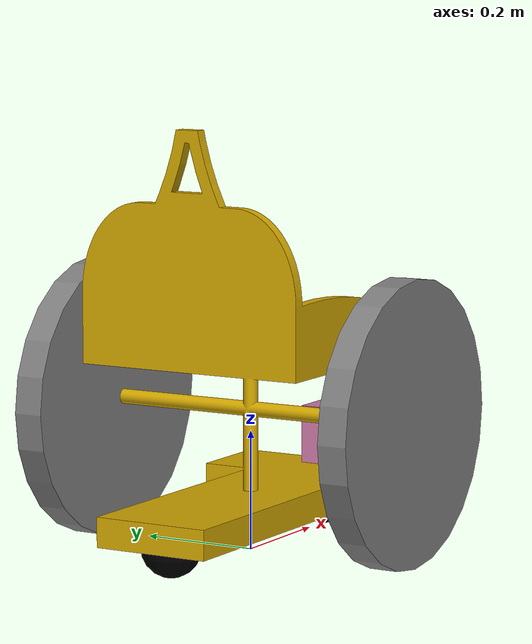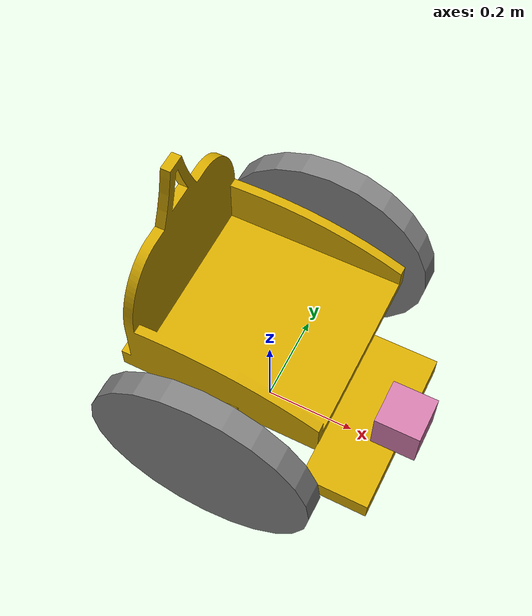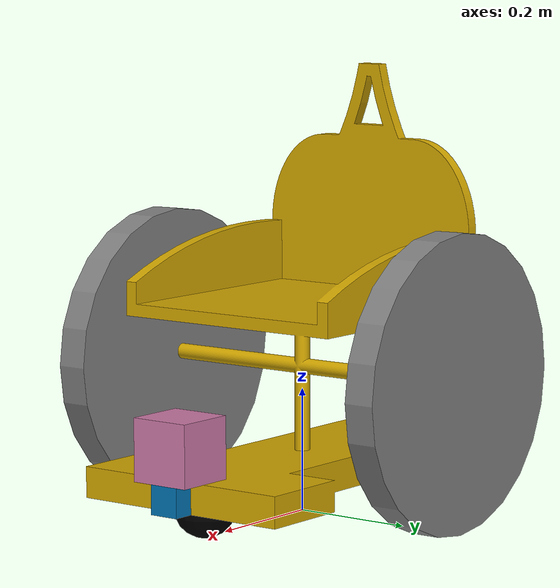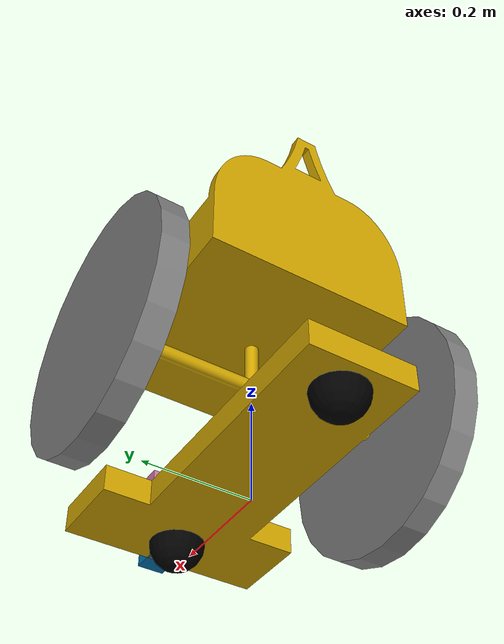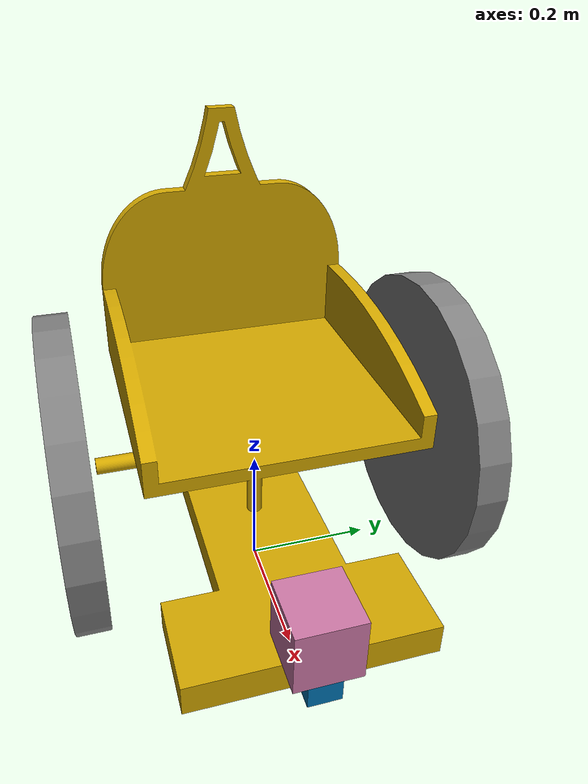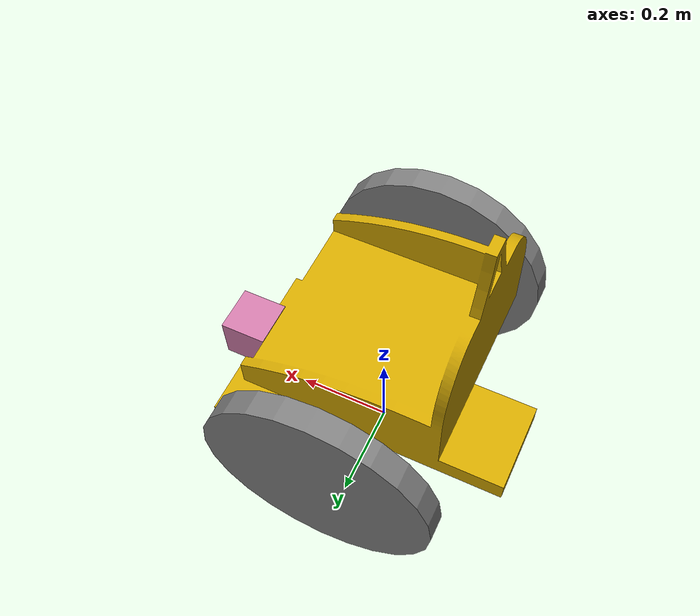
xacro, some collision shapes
<?xml version='1.0'?>

<robot name="wheelchair_bot" xmlns:xacro="http://www.ros.org/wiki/xacro">

  <xacro:include filename="$(find slam_my_world)/urdf/wheelchair_bot.gazebo"/>

  <material name="grey">
     <color rgba="0.5 0.5 0.5 1"/>
  </material>

  <material name="yellow">
    <color rgba="0.82 0.65 0 1"/>
  </material>

  <material name="black">
    <color rgba="0 0 0 1"/>
  </material>

  <link name="robot_footprint"></link>

  <joint name="robot_footprint_joint" type="fixed">
    <origin xyz="0 0 0" rpy="0 0 0" />
    <parent link="robot_footprint"/>
    <child link="chassis" />
  </joint>

  <!-- Chassis Link -->
  <link name='chassis'>
    <pose>0 0 0 0 0 0</pose>

    <inertial>
      <mass value="10.0"/>
      <origin xyz="0 0 0.325" rpy=" 0 0 0"/>
      <inertia
          ixx="0.25" ixy="0" ixz="0"
          iyy="0.25" iyz="0"
          izz="0.25"
      />
    </inertial>

    <collision name='chassis_collision'>
      <origin xyz="0 0 0.325" rpy=" 0 0 0"/>
      <geometry>
        <box size="0.575 0.575 0.575"/>
      </geometry>
    </collision>

    <visual name='chassis_visual'>
      <origin xyz="0 0 0.325" rpy=" 0 0 0"/>
      <geometry>
        <mesh filename="package://slam_my_world/meshes/wheelchair.STL" scale="0.001 0.001 0.001"/>
      </geometry>
      <material name="yellow"/>
    </visual>

    <collision name='back_caster_collision'>
      <origin xyz="-0.25 0 0.05" rpy=" 0 0 0"/>
      <geometry>
        <sphere radius="0.05"/>
      </geometry>
      <surface>
        <friction>
          <ode>
            <mu>0</mu>
            <mu2>0</mu2>
            <slip1>1.0</slip1>
            <slip2>1.0</slip2>
          </ode>
        </friction>
      </surface>
    </collision>

    <visual name='back_caster_visual'>
      <origin xyz="-0.25 0 0.05" rpy=" 0 0 0"/>
      <geometry>
        <sphere radius="0.0499"/>
      </geometry>
      <material name="black"/>
    </visual>

    <collision name='front_caster_collision'>
      <origin xyz="0.25 0 0.05" rpy=" 0 0 0"/>
      <geometry>
        <sphere radius="0.0499"/>
      </geometry>
      <surface>
        <friction>
          <ode>
            <mu>0</mu>
            <mu2>0</mu2>
            <slip1>1.0</slip1>
            <slip2>1.0</slip2>
          </ode>
        </friction>
      </surface>
    </collision>

    <visual name='front_caster_visual'>
      <origin xyz="0.25 0 0.05" rpy=" 0 0 0"/>
      <geometry>
        <sphere radius="0.05"/>
      </geometry>
      <material name="black"/>
    </visual>

  </link>

  <!-- ========= Wheel Links ========= -->

  <link name="left_wheel">
    <inertial>
      <mass value="5.0"/>
      <origin xyz="0 0 0" rpy="0 1.5707 1.5707"/>
      <inertia
          ixx="0.1" ixy="0" ixz="0"
          iyy="0.1" iyz="0"
          izz="0.1"
      />
    </inertial>

    <visual>
      <geometry>
        <cylinder length="0.05" radius="0.2375"/>
      </geometry>
      <origin xyz="0 0 0" rpy="0 1.5707 1.5707"/>
      <material name="grey"/>
    </visual>

    <collision>
      <geometry>
        <cylinder length="0.05" radius="0.2375"/>
      </geometry>
      <origin xyz="0 0 0" rpy="0 1.5707 1.5707"/>
    </collision>
  </link>

  <joint type="continuous" name="left_wheel_hinge">
    <origin xyz="0 0.285 0.2375" rpy="0 0 0"/>
    <child link="left_wheel"/>
    <parent link="chassis"/>
    <axis xyz="0 1 0" rpy="0 0 0"/>
    <limit effort="10000" velocity="1000"/>
    <joint_properties damping="1.0" friction="1.0"/>
  </joint>

  <link name="right_wheel">

    <inertial>
      <mass value="5.0"/>
      <origin xyz="0 0 0" rpy="0 1.5707 1.5707"/>
      <inertia
          ixx="0.1" ixy="0" ixz="0"
          iyy="0.1" iyz="0"
          izz="0.1"
      />
    </inertial>

    <visual>
      <geometry>
        <cylinder length="0.05" radius="0.2375"/>
      </geometry>
      <origin xyz="0 0 0" rpy="0 1.5707 1.5707"/>
      <material name="grey"/>
    </visual>

    <collision>
      <geometry>
        <cylinder length="0.05" radius="0.2375"/>
      </geometry>
      <origin xyz="0 0 0" rpy="0 1.5707 1.5707"/>
    </collision>
  </link>

  <joint type="continuous" name="right_wheel_hinge">
    <origin xyz="0 -0.285 0.2375" rpy="0 0 0"/>
    <child link="right_wheel"/>
    <parent link="chassis"/>
    <axis xyz="0 1 0" rpy="0 0 0"/>
    <limit effort="10000" velocity="1000"/>
    <joint_properties damping="1.0" friction="1.0"/>
  </joint>

<!-- ========= Camera ========= -->

  <link name="camera">

    <inertial>
      <mass value="0.1"/>
      <origin xyz="0 0 0" rpy="0 0 0"/>
      <inertia
          ixx="1e-6" ixy="0" ixz="0"
          iyy="1e-6" iyz="0"
          izz="1e-6"
      />
    </inertial>

    <visual>
      <geometry>
        <box size="0.05 0.05 0.05"/>
      </geometry>
      <origin xyz="0 0 0" rpy="0 0 0"/>
    </visual>

    <collision>
      <geometry>
        <box size="0.05 0.05 0.05"/>
      </geometry>
      <origin xyz="0 0 0" rpy="0 0 0"/>
    </collision>
  </link>

  <joint type="fixed" name="camera_joint">
    <origin xyz="0.325 0 0.075" rpy="0 0 0"/>
    <child link="camera"/>
    <parent link="chassis"/>
  </joint>

  <!--Add RGBD Camera link and joint-->
  <link name="camera_rgbd_frame"></link>
  <joint name="camera_rgbd_joint" type="fixed">
    <origin xyz="0 0 0" rpy="-${pi/2} 0 -${pi/2}"/>
    <parent link="camera"/>
    <child link="camera_rgbd_frame"/>
  </joint>

  <!-- ========= Hokuyo Laser ========= -->

  <link name="hokuyo">

    <inertial>
      <mass value="0.1"/>
      <origin xyz="0 0 0" rpy="0 0 0"/>
      <inertia
          ixx="1e-6" ixy="0" ixz="0"
          iyy="1e-6" iyz="0"
          izz="1e-6"
      />
    </inertial>

    <visual>
      <geometry>
        <mesh filename="package://slam_my_world/meshes/hokuyo.dae"/>
      </geometry>
      <origin xyz="0 0 0" rpy="0 0 0"/>
    </visual>

    <collision>
      <geometry>
        <box size="0.1 0.1 0.1"/>
      </geometry>
      <origin xyz="0 0 0" rpy="0 0 0"/>
    </collision>
  </link>

  <joint type="fixed" name="hokuyo_joint">
    <origin xyz="0.310 0 0.15" rpy="0 0 0"/>
    <child link="hokuyo"/>
    <parent link="chassis"/>
  </joint>

</robot>
